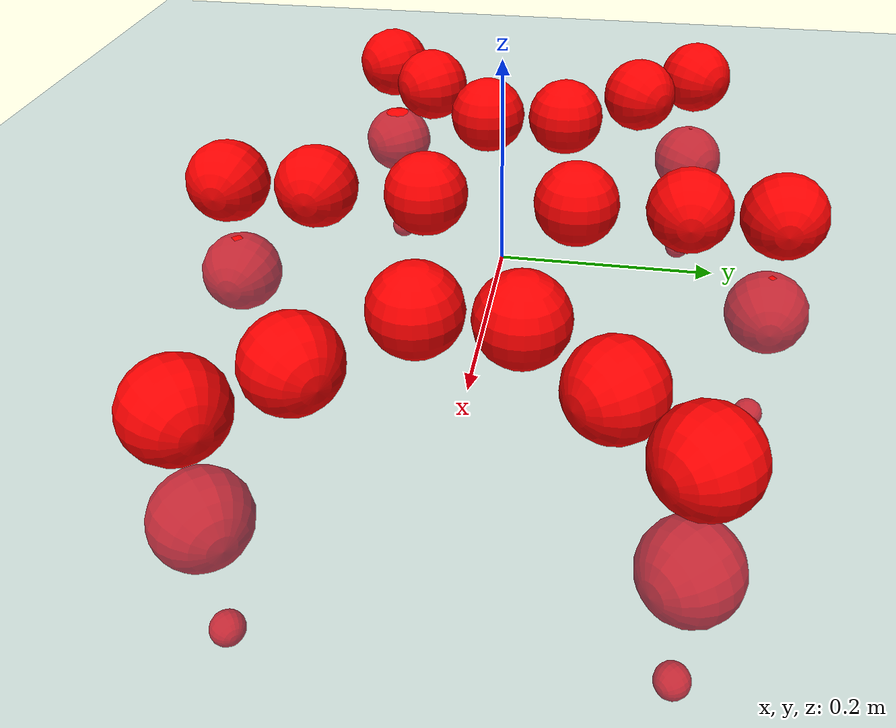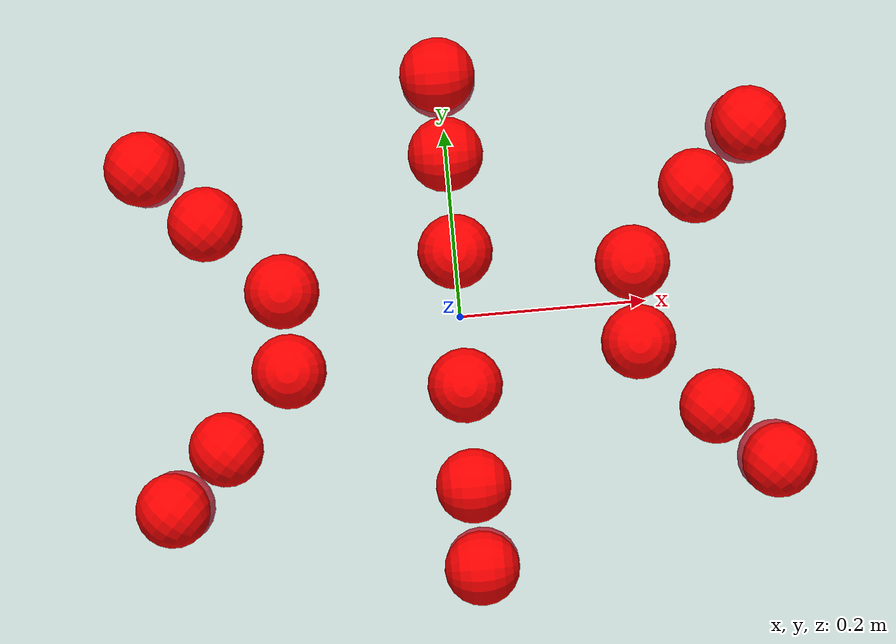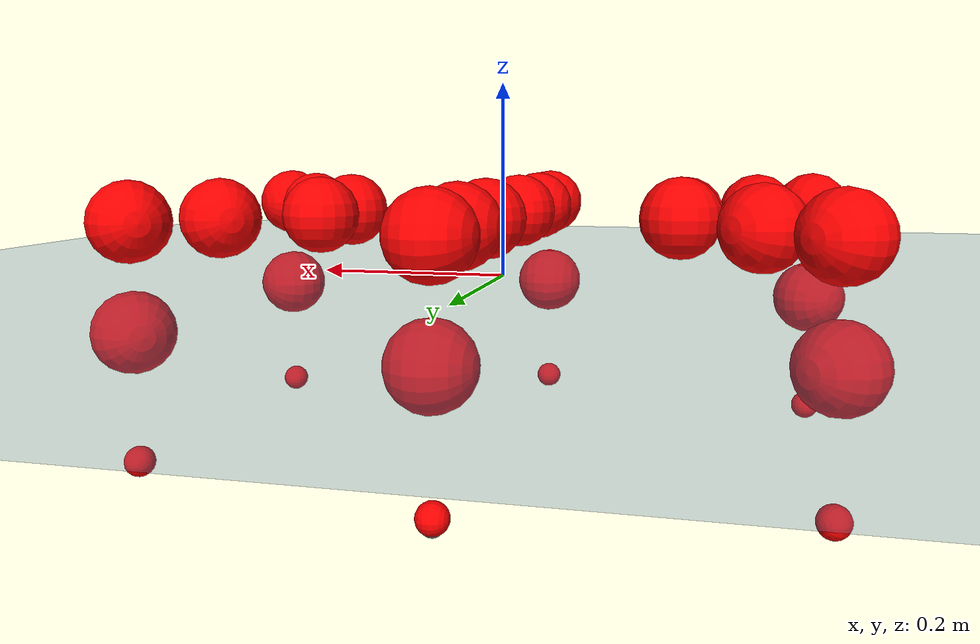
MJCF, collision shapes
<mujoco model="Golem">
  <compiler angle="radian" assetdir="assets" balanceinertia="true" inertiafromgeom="false"/>

  <option timestep="0.005" density="1.2" viscosity="2e-05"/>

  <size nkey="1"/>

  <visual>
    <quality shadowsize="8192"/>
    <map shadowclip="0.5"/>
  </visual>

  <default>
    <default class="/">
      <joint armature="0.01" damping="0.01" frictionloss="0.01"/>
      <geom contype="0" conaffinity="0" group="1" solref="-1000 -80"/>
      <site size="0.01 0.005 0.005" group="5"/>
      <general forcelimited="true" biastype="affine" gainprm="25" biasprm="0 -25 -0.5"/>
      <default class="visual">
        <geom type="mesh" group="2"/>
      </default>
      <default class="collision">
        <geom group="3"/>
      </default>
      <default class="foot">
        <geom size="0.01 0 0" condim="6" group="4" priority="1" solimp="0.015 1 0.01"/>
      </default>
      <default class="reward_collision_sphere">
        <geom group="5" rgba="1 0 0 1"/>
      </default>
    </default>
  </default>

  <asset>
    <texture type="skybox" colorspace="auto" name="//unnamed_texture_0" builtin="gradient" rgb1="0.95 0.95 0.95" rgb2="0.95 0.95 0.95" width="100" height="600"/>
    <texture type="2d" colorspace="auto" name="texplane" builtin="checker" rgb1="0.345 0.575 0.748" rgb2="0.345 0.575 0.748" markrgb="1 1 1" width="512" height="512"/>
    <material name="MatPlane" class="/" texture="texplane" texuniform="true" texrepeat="2 2" specular="0.9"/>
    <mesh name="body" class="/" file="body.stl" scale="0.001 0.001 0.001"/>
    <mesh name="coxa" class="/" file="coxa.stl" scale="0.001 0.001 0.001"/>
    <mesh name="femur" class="/" file="femur.stl" scale="0.001 0.001 0.001"/>
    <mesh name="tibia" class="/" file="tibia.stl" scale="0.001 0.001 0.001"/>
    <mesh name="tarsus" class="/" file="tarsus.stl" scale="0.001 0.001 0.001"/>
  </asset>

  <worldbody>
    <geom name="floor" class="/" size="100 100 0.125" type="plane" group="0" material="MatPlane"/>
    <light name="toplight_shadow" class="/" pos="0 0 5" dir="0.0990148 0.0990148 -0.990148" type="directional" ambient="0.04 0.04 0.04" diffuse="0.55 0.55 0.55" specular="0.12 0.12 0.12"/>
    <light name="toplight_fill" class="/" pos="0 0 5" dir="0.0990148 0.0990148 -0.990148" type="directional" castshadow="false" ambient="0.04 0.04 0.04" diffuse="0.3 0.3 0.3" specular="0.08 0.08 0.08"/>
    <body name="trunk" pos="0.000248674 -0.00010257 0.000883195" quat="1 6.47361e-05 -0.000152626 -3.76193e-05">
      <inertial pos="-0.000312424 0.000472663 -0.0046092" quat="0.999976 0.0015268 0.00609369 0.0030487" mass="3.76604" diaginertia="0.0244254 0.00343615 0.0103836"/>
      <joint name="//unnamed_joint_0" type="free"/>
      <geom name="//unnamed_geom_1" class="/" pos="0 0 0.0643695" quat="1 0 0 0" type="mesh" rgba="0.9 0.9 0.9 1" mesh="body"/>
      <site name="imu" class="/" pos="0.150122 0.00402484 0.105339" size="0.0100185"/>
      <camera name="track" class="/" pos="0 -1.61522 0" quat="0.707107 0.707107 0 0" mode="trackcom"/>
      <camera name="ego_camera" class="/" pos="0.154982 0 0.100577" quat="-0.5 -0.5 0.5 0.5"/>
      <body name="coxa_RR" pos="-0.211671 -0.0666658 0.0632769" quat="0.382737 4.25193e-05 -7.63947e-05 -0.923857">
        <inertial pos="0.000479864 0.000200164 0.00114751" quat="0.999997 -0.00226421 -0.000431754 0.000329667" mass="0.200332" diaginertia="0.0242982 0.00343724 0.0102662"/>
        <joint name="coxa_joint_RR" class="/" pos="0 0 0" axis="0.00140556 -0.00537882 -0.999985" range="-3.1195 3.16561" armature="0.0104707" damping="0.00609093" frictionloss="0.0103876"/>
        <geom name="//unnamed_geom_2" class="/" type="mesh" rgba="0.2 0.2 0.2 1" mesh="coxa"/>
        <geom name="//unnamed_geom_3" class="reward_collision_sphere" size="0.0400741" pos="-0.0357651 0 0"/>
        <body name="femur_RR" pos="0.0705116 0.00213185 0.000840583" quat="0.499852 -0.499969 0.500219 0.499959">
          <inertial pos="0.00106525 0.00123281 0.00182206" quat="1 -0.00024344 0.000272906 0.000110894" mass="0.201181" diaginertia="0.0240342 0.00339054 0.010429"/>
          <joint name="femur_joint_RR" class="/" pos="0 0 0" axis="0.00226397 -0.000795679 -0.999997" range="-3.13508 3.13839" armature="0.00965265" damping="0.000795281" frictionloss="0.0109566"/>
          <geom name="//unnamed_geom_4" class="/" type="mesh" rgba="0.9 0.9 0.9 1" mesh="femur"/>
          <geom name="//unnamed_geom_5" class="reward_collision_sphere" size="0.0400741"/>
          <body name="tibia_RR" pos="-0.000100638 -0.0860214 -0.00167061" quat="0.000117291 1 0.000202702 0.00010636">
            <inertial pos="-0.000699921 -0.00180716 0.000146132" quat="0.999997 -0.00113501 0.00189583 -0.00115337" mass="0.199095" diaginertia="0.024196 0.00342974 0.0103164"/>
            <joint name="tibia_joint_RR" class="/" pos="0 0 0" axis="0.000427749 -0.00169512 0.999998" stiffness="0.000582761" range="-3.14053 3.13887" armature="0.0103272" damping="0.010469" frictionloss="0.010269"/>
            <geom name="//unnamed_geom_6" class="/" type="mesh" rgba="0.2 0.2 0.2 1" mesh="tibia"/>
            <geom name="//unnamed_geom_7" class="reward_collision_sphere" size="0.0400741"/>
            <body name="tarsus_RR" pos="0.103061 0.000597385 -8.60583e-06" quat="1 -7.88816e-05 0.000284884 4.53578e-05">
              <inertial pos="0.0726288 0.00104743 -0.000236633" quat="0.500535 0.498759 0.502878 0.497813" mass="0.201783" diaginertia="0.0245033 0.00346066 0.0103527"/>
              <joint name="tarsus_joint_RR" class="/" pos="0 0 0" axis="-0.00235017 0.00263075 0.999994" stiffness="0.000221585" range="-3.17503 3.17702" armature="0.0101515" damping="0" frictionloss="0.00986512"/>
              <geom name="//unnamed_geom_8" class="/" type="mesh" rgba="0.9 0.9 0.9 1" mesh="tarsus"/>
              <geom name="foot_1" class="foot" size="0.00989194" pos="0.133523 0 0" quat="0 -0.707107 0 0.707107"/>
              <geom name="//unnamed_geom_10" class="reward_collision_sphere" size="0.0400741"/>
              <geom name="//unnamed_geom_11" class="reward_collision_sphere" size="0.0150278" pos="0.128158 0 0"/>
              <site name="foot_1" class="foot" pos="0.133523 0 0" quat="0 -0.707107 0 0.707107" size="0.0100185"/>
            </body>
          </body>
        </body>
      </body>
      <body name="coxa_RM" pos="-0.00158841 -0.108341 0.0632249" quat="0.706808 0.000147075 0.000221649 -0.707405">
        <inertial pos="0.000467104 0.00078115 0.000148729" quat="0.999965 -0.00320145 -0.00346616 0.00685577" mass="0.20367" diaginertia="0.02412 0.00343686 0.0104075"/>
        <joint name="coxa_joint_RM" class="/" pos="0 0 0" axis="-0.00188604 -0.00336562 -0.999993" range="-3.14045 3.1452" armature="0.0101057" damping="0.0106959" frictionloss="0.0097543"/>
        <geom name="//unnamed_geom_12" class="/" type="mesh" rgba="0.2 0.2 0.2 1" mesh="coxa"/>
        <geom name="//unnamed_geom_13" class="reward_collision_sphere" size="0.0400741" pos="-0.0357651 0 0"/>
        <body name="femur_RM" pos="0.0711015 -0.000449327 -0.00055215" quat="0.499494 -0.500304 0.50003 0.500171">
          <inertial pos="-0.00147678 0.000653992 -0.00187463" quat="0.999997 -0.00122919 -0.00232061 -0.000232444" mass="0.203152" diaginertia="0.023935 0.00343398 0.0101724"/>
          <joint name="femur_joint_RM" class="/" pos="0 0 0" axis="-3.5129e-05 0.00349849 -0.999994" range="-3.14608 3.16542" armature="0.00946306" damping="0.00517779" frictionloss="0.00948305"/>
          <geom name="//unnamed_geom_14" class="/" type="mesh" rgba="0.9 0.9 0.9 1" mesh="femur"/>
          <geom name="//unnamed_geom_15" class="reward_collision_sphere" size="0.0400741"/>
          <body name="tibia_RM" pos="-2.50433e-05 -0.087732 0.00145621" quat="5.59442e-05 1 -4.00367e-05 0.000443847">
            <inertial pos="0.000574225 -0.000522 -0.000400643" quat="1 0.000131622 -0.000156366 0.000307417" mass="0.199532" diaginertia="0.023732 0.00336474 0.0102365"/>
            <joint name="tibia_joint_RM" class="/" pos="0 0 0" axis="0.00525646 -0.00273617 0.999982" range="-3.15827 3.12101" armature="0.00982321" damping="0" frictionloss="0.00952541"/>
            <geom name="//unnamed_geom_16" class="/" type="mesh" rgba="0.2 0.2 0.2 1" mesh="tibia"/>
            <geom name="//unnamed_geom_17" class="reward_collision_sphere" size="0.0400741"/>
            <body name="tarsus_RM" pos="0.103458 0.00107838 -0.000923174" quat="1 -1.71249e-05 -0.000228657 6.9418e-06">
              <inertial pos="0.0721994 4.7632e-05 -3.31827e-06" quat="0.5003 0.500478 0.499856 0.499365" mass="0.199032" diaginertia="0.0236802 0.00339973 0.00996413"/>
              <joint name="tarsus_joint_RM" class="/" pos="0 0 0" axis="-0.00250936 0.00208654 0.999995" range="-3.15836 3.10701" armature="0.0100738" damping="0.0019265" frictionloss="0.0101763"/>
              <geom name="//unnamed_geom_18" class="/" type="mesh" rgba="0.9 0.9 0.9 1" mesh="tarsus"/>
              <geom name="foot_2" class="foot" size="0.00975878" pos="0.133523 0 0" quat="0 -0.707107 0 0.707107"/>
              <geom name="//unnamed_geom_20" class="reward_collision_sphere" size="0.0400741"/>
              <geom name="//unnamed_geom_21" class="reward_collision_sphere" size="0.0150278" pos="0.128158 0 0"/>
              <site name="foot_2" class="foot" pos="0.133523 0 0" quat="0 -0.707107 0 0.707107" size="0.0100185"/>
            </body>
          </body>
        </body>
      </body>
      <body name="coxa_RF" pos="0.211063 -0.0678355 0.0633617" quat="0.924079 3.52409e-06 -7.39551e-05 -0.382201">
        <inertial pos="-0.000877039 -0.00207419 0.000470941" quat="0.999996 0.0021422 -0.000531239 -0.00198002" mass="0.200467" diaginertia="0.0241006 0.00341088 0.0102067"/>
        <joint name="coxa_joint_RF" class="/" pos="0 0 0" axis="-8.0666e-06 0.000411251 -1" stiffness="0.000671487" range="-3.1391 3.13475" armature="0.00975735" damping="0" frictionloss="0.0100261"/>
        <geom name="//unnamed_geom_22" class="/" type="mesh" rgba="0.2 0.2 0.2 1" mesh="coxa"/>
        <geom name="//unnamed_geom_23" class="reward_collision_sphere" size="0.0400741" pos="-0.0357651 0 0"/>
        <body name="femur_RF" pos="0.0719072 0.000783023 -0.00135883" quat="0.499924 -0.499935 0.500059 0.500082">
          <inertial pos="0.000683096 -0.00014731 0.000529334" quat="0.999997 -0.00113986 -0.0015703 -0.0014577" mass="0.198807" diaginertia="0.0241267 0.00332279 0.0102019"/>
          <joint name="femur_joint_RF" class="/" pos="0 0 0" axis="0.000640269 -0.00188656 -0.999998" range="-3.11268 3.13655" armature="0.0101336" damping="0.00477717" frictionloss="0.00998029"/>
          <geom name="//unnamed_geom_24" class="/" type="mesh" rgba="0.9 0.9 0.9 1" mesh="femur"/>
          <geom name="//unnamed_geom_25" class="reward_collision_sphere" size="0.0400741"/>
          <body name="tibia_RF" pos="-0.00105831 -0.0875778 -0.00122769" quat="-3.02666e-06 1 -1.60143e-05 9.33181e-06">
            <inertial pos="5.00865e-08 0.00102387 8.22041e-06" quat="0.999965 -0.00403523 0.00584747 -0.0043934" mass="0.206729" diaginertia="0.0240506 0.0034621 0.0103436"/>
            <joint name="tibia_joint_RF" class="/" pos="0 0 0" axis="-0.00119436 -0.000337737 0.999999" range="-3.13949 3.13906" armature="0.0100341" damping="0.00158014" frictionloss="0.0098355"/>
            <geom name="//unnamed_geom_26" class="/" type="mesh" rgba="0.2 0.2 0.2 1" mesh="tibia"/>
            <geom name="//unnamed_geom_27" class="reward_collision_sphere" size="0.0400741"/>
            <body name="tarsus_RF" pos="0.105479 0.000268175 -0.00168239" quat="1 -0.000356843 -8.4162e-06 8.13669e-05">
              <inertial pos="0.0704464 -0.00103565 -0.000997457" quat="0.50258 0.500941 0.498383 0.498081" mass="0.197237" diaginertia="0.0241664 0.00341548 0.0101846"/>
              <joint name="tarsus_joint_RF" class="/" pos="0 0 0" axis="-0.00380339 -0.00196372 0.999991" range="-3.14436 3.13863" armature="0.0100716" damping="0.0118134" frictionloss="0.0103249"/>
              <geom name="//unnamed_geom_28" class="/" type="mesh" rgba="0.9 0.9 0.9 1" mesh="tarsus"/>
              <geom name="foot_3" class="foot" size="0.0102108" pos="0.133523 0 0" quat="0 -0.707107 0 0.707107"/>
              <geom name="//unnamed_geom_30" class="reward_collision_sphere" size="0.0400741"/>
              <geom name="//unnamed_geom_31" class="reward_collision_sphere" size="0.0150278" pos="0.128158 0 0"/>
              <site name="foot_3" class="foot" pos="0.133523 0 0" quat="0 -0.707107 0 0.707107" size="0.0100185"/>
            </body>
          </body>
        </body>
      </body>
      <body name="coxa_LR" pos="-0.211754 0.0689938 0.06626" quat="0.383221 2.62684e-05 -2.5184e-05 0.923657">
        <inertial pos="-8.49697e-05 -0.000268699 0.0017002" quat="0.999997 0.00186737 0.000726359 -0.00122611" mass="0.20021" diaginertia="0.0238608 0.00338746 0.00999487"/>
        <joint name="coxa_joint_LR" class="/" pos="0 0 0" axis="0.000552719 -0.00191441 -0.999998" range="-3.11997 3.12495" armature="0.0104821" damping="0" frictionloss="0.0092814"/>
        <geom name="//unnamed_geom_32" class="/" type="mesh" rgba="0.2 0.2 0.2 1" mesh="coxa"/>
        <geom name="//unnamed_geom_33" class="reward_collision_sphere" size="0.0400741" pos="-0.0357651 0 0"/>
        <body name="femur_LR" pos="0.0726107 -0.00211526 -0.00155716" quat="0.499913 -0.500293 0.500038 0.499755">
          <inertial pos="0.000856911 0.000786065 -0.000141232" quat="0.99999 0.00235791 -0.00252692 0.00267931" mass="0.196806" diaginertia="0.0240957 0.00345029 0.010259"/>
          <joint name="femur_joint_LR" class="/" pos="0 0 0" axis="0.00413394 -0.0037033 0.999985" range="-3.17638 3.1134" armature="0.00931646" damping="0.00620811" frictionloss="0.00986303"/>
          <geom name="//unnamed_geom_34" class="/" type="mesh" rgba="0.9 0.9 0.9 1" mesh="femur"/>
          <geom name="//unnamed_geom_35" class="reward_collision_sphere" size="0.0400741"/>
          <body name="tibia_LR" pos="5.46234e-05 -0.0893107 -0.00154057" quat="-0.000152703 1 0.000211546 0.000337991">
            <inertial pos="-0.00111613 -0.000863457 -0.000439487" quat="1 7.03027e-05 0.00078166 -0.000591572" mass="0.202756" diaginertia="0.024112 0.00347918 0.010392"/>
            <joint name="tibia_joint_LR" class="/" pos="0 0 0" axis="0.00682854 0.00409313 -0.999968" range="-3.12937 3.1244" armature="0.0104405" damping="0" frictionloss="0.00998404"/>
            <geom name="//unnamed_geom_36" class="/" type="mesh" rgba="0.2 0.2 0.2 1" mesh="tibia"/>
            <geom name="//unnamed_geom_37" class="reward_collision_sphere" size="0.0400741"/>
            <body name="tarsus_LR" pos="0.106179 0.00119549 0.000889766" quat="1 4.20018e-05 -0.000710533 -1.29154e-05">
              <inertial pos="0.071263 -4.61815e-05 0.000967217" quat="0.499858 0.499586 0.50033 0.500226" mass="0.200155" diaginertia="0.0239637 0.00336428 0.0101307"/>
              <joint name="tarsus_joint_LR" class="/" pos="0 0 0" axis="0.00292663 -0.00189141 -0.999994" range="-3.13596 3.1423" armature="0.00951858" damping="0.0297853" frictionloss="0.0105464"/>
              <geom name="//unnamed_geom_38" class="/" type="mesh" rgba="0.9 0.9 0.9 1" mesh="tarsus"/>
              <geom name="foot_4" class="foot" size="0.0100068" pos="0.133523 0 0" quat="0.707107 0 -0.707107 0"/>
              <geom name="//unnamed_geom_40" class="reward_collision_sphere" size="0.0400741"/>
              <geom name="//unnamed_geom_41" class="reward_collision_sphere" size="0.0150278" pos="0.128158 0 0"/>
              <site name="foot_4" class="foot" pos="0.133523 0 0" quat="0.707107 0 -0.707107 0" size="0.0100185"/>
            </body>
          </body>
        </body>
      </body>
      <body name="coxa_LM" pos="0.000271953 0.105565 0.0645693" quat="0.707097 -3.91396e-05 -3.64104e-05 0.707117">
        <inertial pos="0.00132071 -0.000152189 -0.000195086" quat="0.99999 0.00106961 -0.00399985 0.00137818" mass="0.198622" diaginertia="0.0243951 0.00339932 0.0102206"/>
        <joint name="coxa_joint_LM" class="/" pos="0 0 0" axis="0.0057983 0.00219694 -0.999981" range="-3.12792 3.14285" armature="0.00981403" damping="0" frictionloss="0.0103172"/>
        <geom name="//unnamed_geom_42" class="/" type="mesh" rgba="0.2 0.2 0.2 1" mesh="coxa"/>
        <geom name="//unnamed_geom_43" class="reward_collision_sphere" size="0.0400741" pos="-0.0357651 0 0"/>
        <body name="femur_LM" pos="0.0677212 0.00108695 0.000820241" quat="0.500196 -0.499929 0.499946 0.499929">
          <inertial pos="-0.00061381 0.000238182 0.000815002" quat="0.999993 -0.000290426 -0.0035744 -0.000783367" mass="0.202774" diaginertia="0.0234224 0.00341021 0.0103737"/>
          <joint name="femur_joint_LM" class="/" pos="0 0 0" axis="0.0117143 -0.0023821 0.999929" stiffness="0.000514249" range="-3.11261 3.1589" armature="0.0102827" damping="0" frictionloss="0.0100211"/>
          <geom name="//unnamed_geom_44" class="/" type="mesh" rgba="0.9 0.9 0.9 1" mesh="femur"/>
          <geom name="//unnamed_geom_45" class="reward_collision_sphere" size="0.0400741"/>
          <body name="tibia_LM" pos="0.000570705 -0.084752 0.00148363" quat="-7.45424e-05 1 -0.000133966 8.71328e-06">
            <inertial pos="-0.00139705 0.000159297 0.000110853" quat="0.999993 -0.00106547 -0.000980515 0.00341543" mass="0.202001" diaginertia="0.024112 0.00343899 0.0102267"/>
            <joint name="tibia_joint_LM" class="/" pos="0 0 0" axis="-0.000684032 0.000384518 -1" range="-3.15113 3.15885" armature="0.0100838" damping="0" frictionloss="0.00900088"/>
            <geom name="//unnamed_geom_46" class="/" type="mesh" rgba="0.2 0.2 0.2 1" mesh="tibia"/>
            <geom name="//unnamed_geom_47" class="reward_collision_sphere" size="0.0400741"/>
            <body name="tarsus_LM" pos="0.106115 -0.000893231 0.000415423" quat="1 -5.45789e-05 -0.000178649 -0.000421744">
              <inertial pos="0.071012 0.000231406 0.00052073" quat="0.499892 0.499839 0.502733 0.497522" mass="0.199815" diaginertia="0.0241647 0.00343505 0.0103432"/>
              <joint name="tarsus_joint_LM" class="/" pos="0 0 0" axis="0.00347614 0.00112505 -0.999993" stiffness="0.00171618" range="-3.1362 3.13909" armature="0.00965" damping="0.00164276" frictionloss="0.0102552"/>
              <geom name="//unnamed_geom_48" class="/" type="mesh" rgba="0.9 0.9 0.9 1" mesh="tarsus"/>
              <geom name="foot_5" class="foot" size="0.0108943" pos="0.133523 0 0" quat="0.707107 0 -0.707107 0"/>
              <geom name="//unnamed_geom_50" class="reward_collision_sphere" size="0.0400741"/>
              <geom name="//unnamed_geom_51" class="reward_collision_sphere" size="0.0150278" pos="0.128158 0 0"/>
              <site name="foot_5" class="foot" pos="0.133523 0 0" quat="0.707107 0 -0.707107 0" size="0.0100185"/>
            </body>
          </body>
        </body>
      </body>
      <body name="coxa_LF" pos="0.211963 0.067198 0.0633264" quat="0.923918 -0.000224593 -0.000182861 0.38259">
        <inertial pos="0.000191817 -0.00166311 0.000393258" quat="0.999986 -0.00295617 -0.0043025 0.000383437" mass="0.204546" diaginertia="0.0247249 0.00351978 0.0105153"/>
        <joint name="coxa_joint_LF" class="/" pos="0 0 0" axis="0.00587268 -0.0041935 -0.999974" range="-3.13806 3.1423" armature="0.0095663" damping="0.000419906" frictionloss="0.00970806"/>
        <geom name="//unnamed_geom_52" class="/" type="mesh" rgba="0.2 0.2 0.2 1" mesh="coxa"/>
        <geom name="//unnamed_geom_53" class="reward_collision_sphere" size="0.0400741" pos="-0.0357651 0 0"/>
        <body name="femur_LF" pos="0.0693685 0.000684098 0.000449768" quat="0.499933 -0.500022 0.499982 0.500062">
          <inertial pos="-0.000228671 -0.00054331 -0.000983327" quat="0.999999 0.000774237 0.000443154 -0.000745363" mass="0.19913" diaginertia="0.0236223 0.00340045 0.0101792"/>
          <joint name="femur_joint_LF" class="/" pos="0 0 0" axis="0.00067694 0.000197433 1" range="-3.13952 3.13762" armature="0.00987684" damping="0" frictionloss="0.0100266"/>
          <geom name="//unnamed_geom_54" class="/" type="mesh" rgba="0.9 0.9 0.9 1" mesh="femur"/>
          <geom name="//unnamed_geom_55" class="reward_collision_sphere" size="0.0400741"/>
          <body name="tibia_LF" pos="8.4878e-05 -0.0870483 -0.000176712" quat="5.99404e-05 1 2.74666e-05 3.96782e-05">
            <inertial pos="0.00139657 0.00158054 0.00190204" quat="0.999992 0.000537611 -0.0033323 -0.00217267" mass="0.200407" diaginertia="0.0240712 0.00340363 0.0104957"/>
            <joint name="tibia_joint_LF" class="/" pos="0 0 0" axis="-0.00397088 -0.00715254 -0.999967" range="-3.14426 3.11125" armature="0.00998327" damping="0" frictionloss="0.0102428"/>
            <geom name="//unnamed_geom_56" class="/" type="mesh" rgba="0.2 0.2 0.2 1" mesh="tibia"/>
            <geom name="//unnamed_geom_57" class="reward_collision_sphere" size="0.0400741"/>
            <body name="tarsus_LF" pos="0.106306 0.000106091 -0.000638524" quat="1 -3.61469e-06 2.4183e-06 -6.32521e-06">
              <inertial pos="0.0723633 0.000422162 0.00133612" quat="0.497658 0.500675 0.499946 0.501712" mass="0.199905" diaginertia="0.0243226 0.00343364 0.0105011"/>
              <joint name="tarsus_joint_LF" class="/" pos="0 0 0" axis="-0.00169929 0.000108566 -0.999999" range="-3.15394 3.10765" armature="0.00959149" damping="0.0118554" frictionloss="0.00963885"/>
              <geom name="//unnamed_geom_58" class="/" type="mesh" rgba="0.9 0.9 0.9 1" mesh="tarsus"/>
              <geom name="foot_6" class="foot" size="0.00987261" pos="0.133523 0 0" quat="0.707107 0 -0.707107 0"/>
              <geom name="//unnamed_geom_60" class="reward_collision_sphere" size="0.0400741"/>
              <geom name="//unnamed_geom_61" class="reward_collision_sphere" size="0.0150278" pos="0.128158 0 0"/>
              <site name="foot_6" class="foot" pos="0.133523 0 0" quat="0.707107 0 -0.707107 0" size="0.0100185"/>
            </body>
          </body>
        </body>
      </body>
    </body>
  </worldbody>

  <contact>
    <pair class="/" geom1="floor" geom2="foot_1" name="//unnamed_contact_0"/>
    <pair class="/" geom1="floor" geom2="foot_2" name="//unnamed_contact_1"/>
    <pair class="/" geom1="floor" geom2="foot_3" name="//unnamed_contact_2"/>
    <pair class="/" geom1="floor" geom2="foot_4" name="//unnamed_contact_3"/>
    <pair class="/" geom1="floor" geom2="foot_5" name="//unnamed_contact_4"/>
    <pair class="/" geom1="floor" geom2="foot_6" name="//unnamed_contact_5"/>
  </contact>

  <actuator>
    <general name="coxa_joint_RR" class="/" joint="coxa_joint_RR" forcerange="-7.34766 7.34766" gainprm="24.767" biasprm="0 -24.767 -0.510257"/>
    <general name="femur_joint_RR" class="/" joint="femur_joint_RR" forcerange="-7.25931 7.25931" gainprm="24.767" biasprm="0 -24.767 -0.510257"/>
    <general name="tibia_joint_RR" class="/" joint="tibia_joint_RR" forcerange="-7.3302 7.3302" gainprm="24.767" biasprm="0 -24.767 -0.510257"/>
    <general name="tarsus_joint_RR" class="/" joint="tarsus_joint_RR" forcerange="-7.42713 7.42713" gainprm="24.767" biasprm="0 -24.767 -0.510257"/>
    <general name="coxa_joint_RM" class="/" joint="coxa_joint_RM" forcerange="-7.21467 7.21467" gainprm="24.767" biasprm="0 -24.767 -0.510257"/>
    <general name="femur_joint_RM" class="/" joint="femur_joint_RM" forcerange="-7.25687 7.25687" gainprm="24.767" biasprm="0 -24.767 -0.510257"/>
    <general name="tibia_joint_RM" class="/" joint="tibia_joint_RM" forcerange="-7.35999 7.35999" gainprm="24.767" biasprm="0 -24.767 -0.510257"/>
    <general name="tarsus_joint_RM" class="/" joint="tarsus_joint_RM" forcerange="-7.26712 7.26712" gainprm="24.767" biasprm="0 -24.767 -0.510257"/>
    <general name="coxa_joint_RF" class="/" joint="coxa_joint_RF" forcerange="-7.23637 7.23637" gainprm="24.767" biasprm="0 -24.767 -0.510257"/>
    <general name="femur_joint_RF" class="/" joint="femur_joint_RF" forcerange="-7.29818 7.29818" gainprm="24.767" biasprm="0 -24.767 -0.510257"/>
    <general name="tibia_joint_RF" class="/" joint="tibia_joint_RF" forcerange="-7.3392 7.3392" gainprm="24.767" biasprm="0 -24.767 -0.510257"/>
    <general name="tarsus_joint_RF" class="/" joint="tarsus_joint_RF" forcerange="-7.39253 7.39253" gainprm="24.767" biasprm="0 -24.767 -0.510257"/>
    <general name="coxa_joint_LR" class="/" joint="coxa_joint_LR" forcerange="-7.54312 7.54312" gainprm="24.767" biasprm="0 -24.767 -0.510257"/>
    <general name="femur_joint_LR" class="/" joint="femur_joint_LR" forcerange="-7.09864 7.09864" gainprm="24.767" biasprm="0 -24.767 -0.510257"/>
    <general name="tibia_joint_LR" class="/" joint="tibia_joint_LR" forcerange="-7.42589 7.42589" gainprm="24.767" biasprm="0 -24.767 -0.510257"/>
    <general name="tarsus_joint_LR" class="/" joint="tarsus_joint_LR" forcerange="-7.32663 7.32663" gainprm="24.767" biasprm="0 -24.767 -0.510257"/>
    <general name="coxa_joint_LM" class="/" joint="coxa_joint_LM" forcerange="-7.39555 7.39555" gainprm="24.767" biasprm="0 -24.767 -0.510257"/>
    <general name="femur_joint_LM" class="/" joint="femur_joint_LM" forcerange="-7.57466 7.57466" gainprm="24.767" biasprm="0 -24.767 -0.510257"/>
    <general name="tibia_joint_LM" class="/" joint="tibia_joint_LM" forcerange="-7.32917 7.32917" gainprm="24.767" biasprm="0 -24.767 -0.510257"/>
    <general name="tarsus_joint_LM" class="/" joint="tarsus_joint_LM" forcerange="-7.12412 7.12412" gainprm="24.767" biasprm="0 -24.767 -0.510257"/>
    <general name="coxa_joint_LF" class="/" joint="coxa_joint_LF" forcerange="-7.50161 7.50161" gainprm="24.767" biasprm="0 -24.767 -0.510257"/>
    <general name="femur_joint_LF" class="/" joint="femur_joint_LF" forcerange="-7.31438 7.31438" gainprm="24.767" biasprm="0 -24.767 -0.510257"/>
    <general name="tibia_joint_LF" class="/" joint="tibia_joint_LF" forcerange="-7.33685 7.33685" gainprm="24.767" biasprm="0 -24.767 -0.510257"/>
    <general name="tarsus_joint_LF" class="/" joint="tarsus_joint_LF" forcerange="-6.764 6.764" gainprm="24.767" biasprm="0 -24.767 -0.510257"/>
  </actuator>

  <sensor>
    <gyro site="imu" name="imu_angular_velocity"/>
    <velocimeter site="imu" name="imu_linear_velocity"/>
    <framelinvel objtype="site" objname="foot_1" name="foot_1_global_linear_velocity"/>
    <framelinvel objtype="site" objname="foot_2" name="foot_2_global_linear_velocity"/>
    <framelinvel objtype="site" objname="foot_3" name="foot_3_global_linear_velocity"/>
    <framelinvel objtype="site" objname="foot_4" name="foot_4_global_linear_velocity"/>
    <framelinvel objtype="site" objname="foot_5" name="foot_5_global_linear_velocity"/>
    <framelinvel objtype="site" objname="foot_6" name="foot_6_global_linear_velocity"/>
  </sensor>

  <keyframe>
    <key name="home" qpos="0 0 0.1457 1 0 0 0 0 0 0 0 0 0 0 0 0 0 0 0 0 0 0 0 0 0 0 0 0 0 0 0"/>
  </keyframe>
</mujoco>
